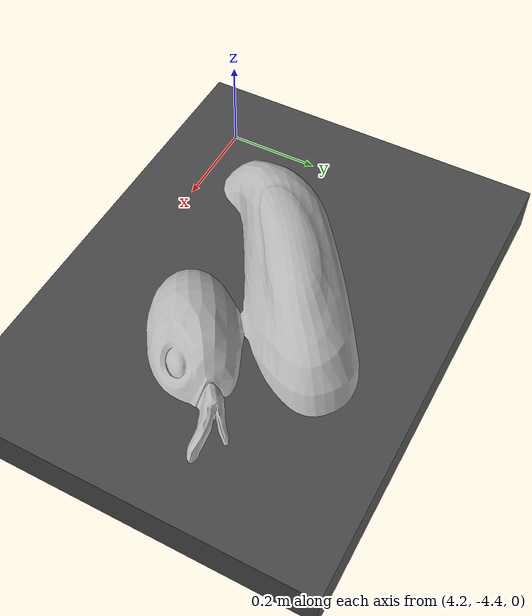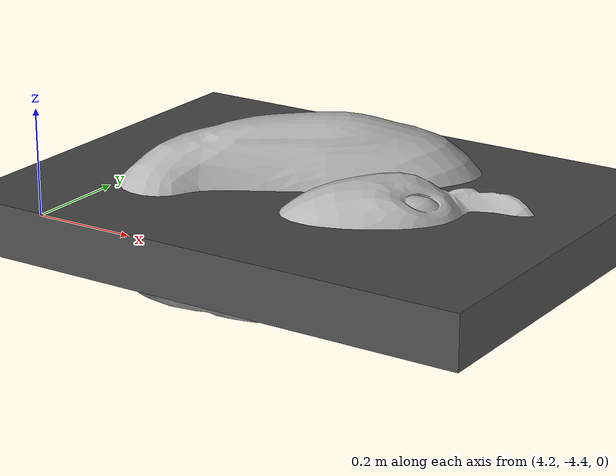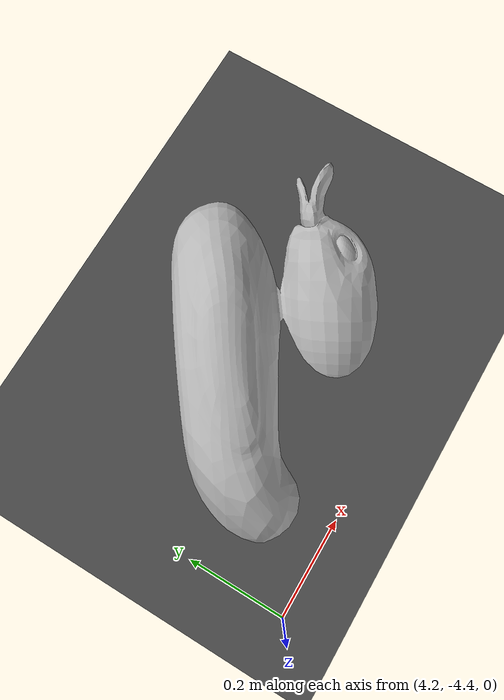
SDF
<sdf version="1.6">
 <world name="default">
  <light name="sun" type="directional">
   <pose>0 0 10 0 -0 0</pose>
   <diffuse>0.8 0.8 0.8 1</diffuse>
   <specular>0.2 0.2 0.2 1</specular>
   <attenuation>
    <range>1000</range>
    <constant>0.9</constant>
    <linear>0.01</linear>
    <quadratic>0.001</quadratic>
   </attenuation>
   <direction>-0.5 0.1 -0.9</direction>
  </light>
  <model name="ground_plane">
   <static>1</static>
   <link name="link">
    <collision name="collision">
     <geometry><plane><normal>0 0 1</normal><size>300 300</size></plane></geometry>
     <surface>
      <contact><collide_bitmask>65535</collide_bitmask></contact>
      <friction><ode><mu>100</mu><mu2>50</mu2></ode></friction>
     </surface>
    </collision>
    <visual name="visual">
     <cast_shadows>0</cast_shadows>
     <geometry><plane><normal>0 0 1</normal><size>100 100</size></plane></geometry>
     <material>
      <script><uri>file://media/materials/scripts/gazebo.material</uri><name>Gazebo/Grey</name></script>
     </material>
    </visual>
   </link>
  </model>
  <gravity>0 0 -9.8</gravity>
  <magnetic_field>6e-06 2.3e-05 -4.2e-05</magnetic_field>
  <atmosphere type="adiabatic"/>
  <physics name="default_physics" default="0" type="ode">
   <max_step_size>0.004</max_step_size>
   <real_time_factor>1</real_time_factor>
   <real_time_update_rate>250</real_time_update_rate>
  </physics>
  <scene><ambient>0.4 0.4 0.4 1</ambient><background>0.7 0.7 0.7 1</background><shadows>1</shadows></scene>
  <spherical_coordinates>
   <surface_model>EARTH_WGS84</surface_model>
   <latitude_deg>0</latitude_deg>
   <longitude_deg>0</longitude_deg>
   <elevation>0</elevation>
   <heading_deg>0</heading_deg>
  </spherical_coordinates>
  <model name="asphalt_plane">
   <static>1</static>
   <link name="link">
    <collision name="collision"><geometry><box><size>20 20 0.1</size></box></geometry></collision>
    <visual name="visual">
     <cast_shadows>0</cast_shadows>
     <geometry><box><size>20 20 0.1</size></box></geometry>
     <material>
      <script>
       <uri>model://asphalt_plane/materials/scripts</uri>
       <uri>model://asphalt_plane/materials/textures</uri>
       <name>vrc/asphalt</name>
      </script>
     </material>
    </visual>
   </link>
   <pose>-0.168285 0.063291 0 0 -0 0</pose>
  </model>
  <model name="beer">
   <link name="link">
    <pose>2 2 0 0 -0 0</pose>
    <inertial>
     <mass>2</mass>
     <inertia><ixx>0.00058</ixx><ixy>0</ixy><ixz>0</ixz><iyy>0.00058</iyy><iyz>0</iyz><izz>0.00019</izz></inertia>
    </inertial>
    <collision name="collision">
     <geometry><mesh><uri>model://duck/meshes/duck.dae</uri></mesh></geometry>
    </collision>
    <visual name="visual"><geometry><mesh><uri>model://duck/meshes/duck.dae</uri></mesh></geometry></visual>
   </link>
   <pose>2.84306 -5.18756 -2.04924 1.57181 0.00024 0.63923</pose>
  </model>
 </world>
</sdf>
